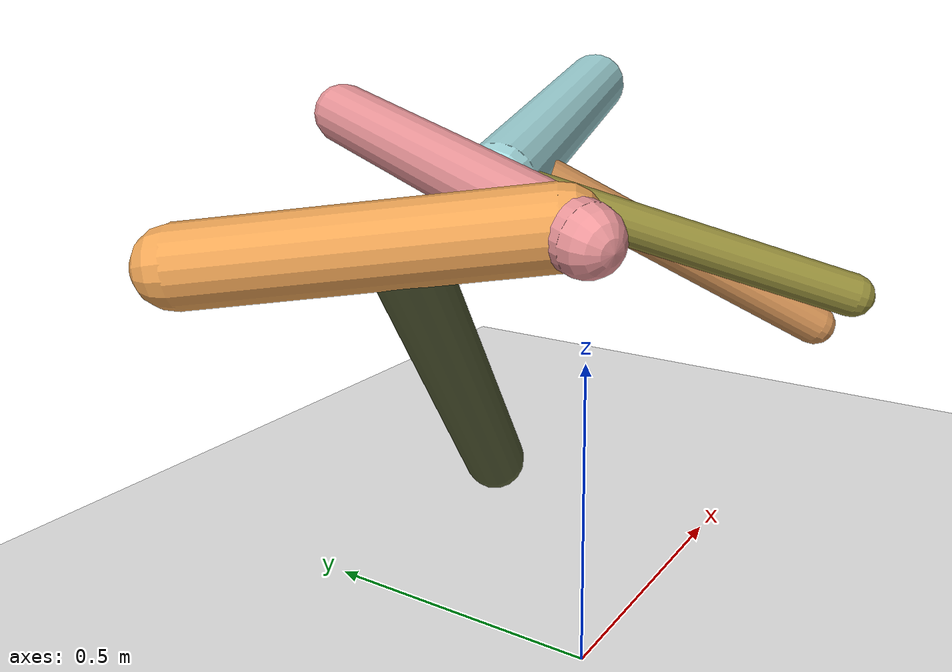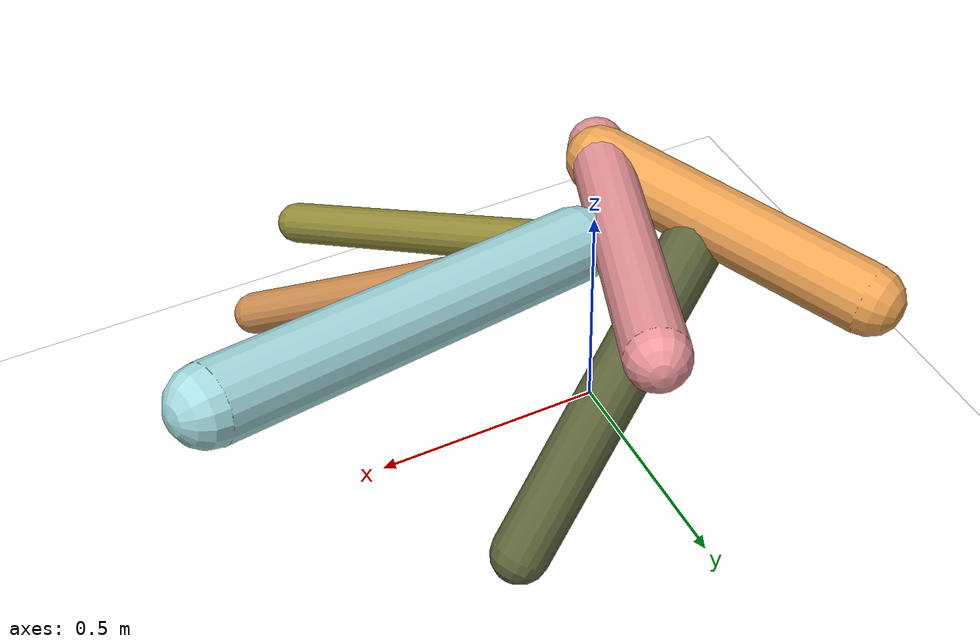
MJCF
<mujoco model="morphology">
  <option timestep="0.01"/>
  <default>
    <default class="/"/>
    <default class="0/"/>
    <default class="0/1/"/>
    <default class="0/1/2/"/>
    <default class="0/3/"/>
    <default class="0/3/4/"/>
    <default class="0/3/4/5/"/>
  </default>
  <asset>
    <texture name="texplane" type="2d" builtin="checker" rgb1="0.10000000000000001 0.20000000000000001 0.29999999999999999" rgb2="0.20000000000000001 0.29999999999999999 0.40000000000000002" width="300" height="300"/>
    <material name="MatPlane" class="/" texture="texplane" texrepeat="20 20" specular="1" shininess="1" reflectance="0.5"/>
  </asset>
  <worldbody>
    <light name="//unnamed_light_0" class="/" directional="true" pos="0 0 1.5" dir="0 0 -1.3" cutoff="100" exponent="1" diffuse="1 1 1" specular="0.10000000000000001 0.10000000000000001 0.10000000000000001"/>
    <geom name="ground" class="/" type="plane" size="15 15 0.5" material="MatPlane" rgba="1 1 1 1"/>
    <site name="body" class="/" size="9.9999999999999995e-07 9.9999999999999995e-07 9.9999999999999995e-07" pos="0 0 0.68622747659683225"/>
    <body pos="0 0 0.68622747659683225" name="0/">
      <freejoint name="0/"/>
      <geom name="0/geom" class="0/" type="capsule" contype="1" conaffinity="1" condim="3" size="0.058254493093794296" rgba="0.91234059368148634 0.58153029429761571 0.59587251681420417 1" friction="0.59999999999999998 0.10000000000000001 0.10000000000000001" fromto="0 0 0 0.26056703402592385 0.67904016353479135 0.12783834916980596"/>
      <site name="0/end0" class="0/" size="0.0050000000000000001" pos="0.26056703402592385 0.67904016353479135 0.12783834916980596"/>
      <site name="0/attach1" class="0/" size="9.9999999999999995e-07 9.9999999999999995e-07 9.9999999999999995e-07" pos="0.020492078208590545 0.053402550287864343 0.010053740907931348"/>
      <body pos="0.020492078208590545 0.053402550287864343 0.010053740907931348" name="0/1/">
        <joint name="0/1/joint/" class="0/" type="hinge" axis="0 1 0" limited="true" range="-43.897148453216481 43.897148453216481"/>
        <geom name="0/1/geom" class="0/1/" type="capsule" contype="1" conaffinity="1" condim="3" size="0.068233872348226851" rgba="0.91565888114834848 0.63302278787218613 0.3272825226013335 1" friction="0.59999999999999998 0.10000000000000001 0.10000000000000001" fromto="0 0 0 -0.27798405485062949 0.50919696135514481 -0.065938400911391803"/>
        <site name="0/1/end1" class="0/1/" size="0.0050000000000000001" pos="-0.27798405485062949 0.50919696135514481 -0.065938400911391803"/>
        <site name="0/1/attach2" class="0/1/" size="9.9999999999999995e-07 9.9999999999999995e-07 9.9999999999999995e-07" pos="-0.11608520403005454 0.21263893420850261 -0.027535653896866377"/>
        <body pos="-0.11608520403005454 0.21263893420850261 -0.027535653896866377" name="0/1/2/">
          <joint name="0/1/2/joint/" class="0/1/" type="hinge" axis="6.9388939039072284e-18 0.12842260500540223 0.9917195342049212" limited="true" range="-44.483204910834999 44.483204910834999"/>
          <geom name="0/1/2/geom" class="0/1/2/" type="capsule" contype="1" conaffinity="1" condim="3" size="0.06116470921178517" rgba="0.37410305271563715 0.40615906073305308 0.23793919696476395 1" friction="0.59999999999999998 0.10000000000000001 0.10000000000000001" fromto="0 0 0 0.47455058960571073 0.14817146835751271 -0.56874556013143551"/>
          <site name="0/1/2/end2" class="0/1/2/" size="0.0050000000000000001" pos="0.47455058960571073 0.14817146835751271 -0.56874556013143551"/>
        </body>
      </body>
      <site name="0/attach3" class="0/" size="9.9999999999999995e-07 9.9999999999999995e-07 9.9999999999999995e-07" pos="0.13960041672529599 0.36380001083805141 0.068490194411175126"/>
      <body pos="0.13960041672529599 0.36380001083805141 0.068490194411175126" name="0/3/">
        <joint name="0/3/joint/" class="0/" type="hinge" axis="0 0 1" limited="true" range="-32.40447555250713 32.40447555250713"/>
        <geom name="0/3/geom" class="0/3/" type="capsule" contype="1" conaffinity="1" condim="3" size="0.039980858929634065" rgba="0.57221577522034917 0.54323075022220646 0.2223408596633738 1" friction="0.59999999999999998 0.10000000000000001 0.10000000000000001" fromto="0 0 0 0.40551178916891972 -0.61343069704181419 -0.24139504931118683"/>
        <site name="0/3/end3" class="0/3/" size="0.0050000000000000001" pos="0.40551178916891972 -0.61343069704181419 -0.24139504931118683"/>
        <site name="0/3/attach4" class="0/3/" size="9.9999999999999995e-07 9.9999999999999995e-07 9.9999999999999995e-07" pos="0.055879112629088928 -0.084530126930196986 -0.033263992586280496"/>
        <body pos="0.055879112629088928 -0.084530126930196986 -0.033263992586280496" name="0/3/4/">
          <joint name="0/3/4/joint/" class="0/3/" type="hinge" axis="2.7755575615628914e-17 -0.36618377093708304 0.93054255458968571" limited="true" range="-61.020100756573811 61.020100756573811"/>
          <geom name="0/3/4/geom" class="0/3/4/" type="capsule" contype="1" conaffinity="1" condim="3" size="0.069988390101037523" rgba="0.63914119299735417 0.85053080054189822 0.86690414504096758 1" friction="0.59999999999999998 0.10000000000000001 0.10000000000000001" fromto="0 0 0 0.74133113184145616 0.20564334740090306 0.12319740934819023"/>
          <site name="0/3/4/end4" class="0/3/4/" size="0.0050000000000000001" pos="0.74133113184145616 0.20564334740090306 0.12319740934819023"/>
          <site name="0/3/4/attach5" class="0/3/4/" size="9.9999999999999995e-07 9.9999999999999995e-07 9.9999999999999995e-07" pos="0.1079697265915896 0.029950524186273149 0.017942846364856255"/>
          <body pos="0.1079697265915896 0.029950524186273149 0.017942846364856255" name="0/3/4/5/">
            <joint name="0/3/4/5/joint/" class="0/3/4/" type="hinge" axis="1.3877787807814457e-17 -0.51391715318194053 0.85783982168314477" limited="true" range="-39.151015119708504 39.151015119708504"/>
            <geom name="0/3/4/5/geom" class="0/3/4/5/" type="capsule" contype="1" conaffinity="1" condim="3" size="0.041190986530466038" rgba="0.80010267944474034 0.55122412614540328 0.31845759001812535 1" friction="0.59999999999999998 0.10000000000000001 0.10000000000000001" fromto="0 0 0 0.38233153107352602 -0.45824097107176559 -0.3327949213134222"/>
            <site name="0/3/4/5/end5" class="0/3/4/5/" size="0.0050000000000000001" pos="0.38233153107352602 -0.45824097107176559 -0.3327949213134222"/>
          </body>
        </body>
      </body>
      <camera name="0/iso" class="0/" mode="trackcom" pos="-2.2999999999999998 -2.2999999999999998 1" xyaxes="0.45000000000000001 -0.45000000000000001 0 0.29999999999999999 0.14999999999999999 0.93999999999999995"/>
    </body>
  </worldbody>
  <actuator>
    <motor name="0/1/motor" class="0/1/" ctrllimited="true" ctrlrange="-1 1" gear="62" joint="0/1/joint/"/>
    <motor name="0/1/2/motor" class="0/1/2/" ctrllimited="true" ctrlrange="-1 1" gear="78" joint="0/1/2/joint/"/>
    <motor name="0/3/motor" class="0/3/" ctrllimited="true" ctrlrange="-1 1" gear="56" joint="0/3/joint/"/>
    <motor name="0/3/4/motor" class="0/3/4/" ctrllimited="true" ctrlrange="-1 1" gear="87" joint="0/3/4/joint/"/>
    <motor name="0/3/4/5/motor" class="0/3/4/5/" ctrllimited="true" ctrlrange="-1 1" gear="72" joint="0/3/4/5/joint/"/>
  </actuator>
  <sensor>
    <subtreelinvel name="velocity" body="0/"/>
  </sensor>
</mujoco>
